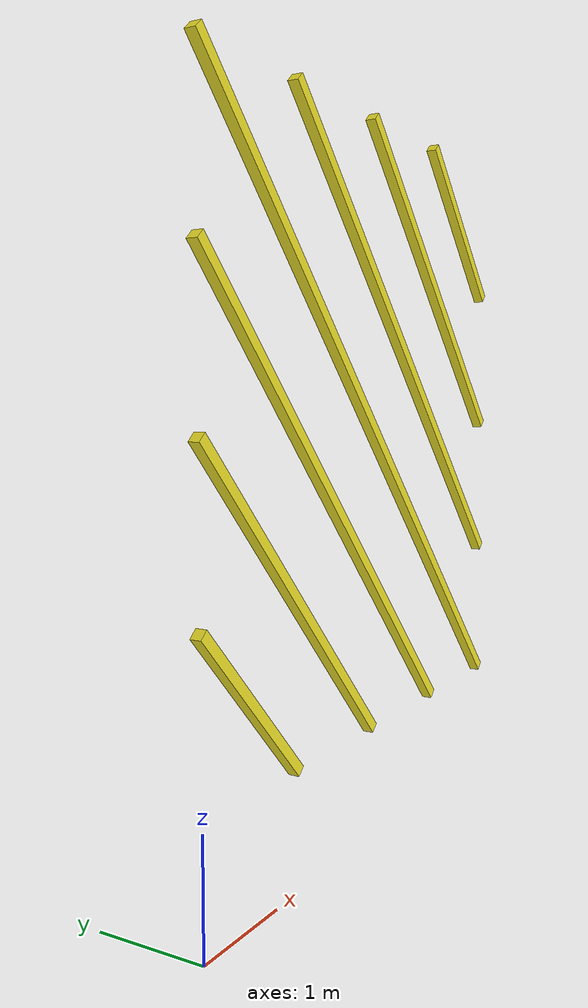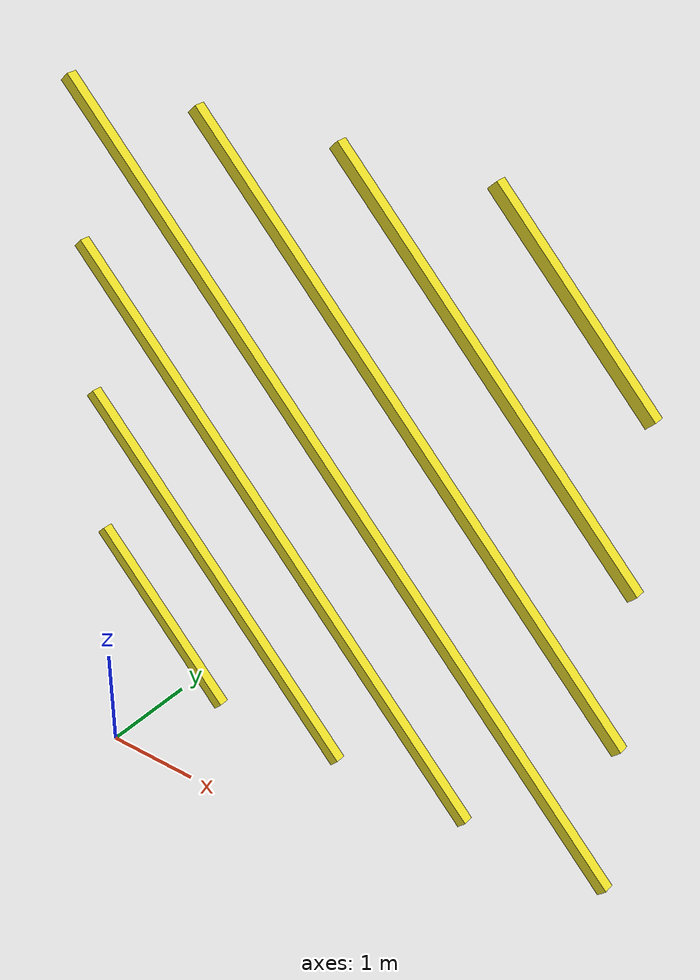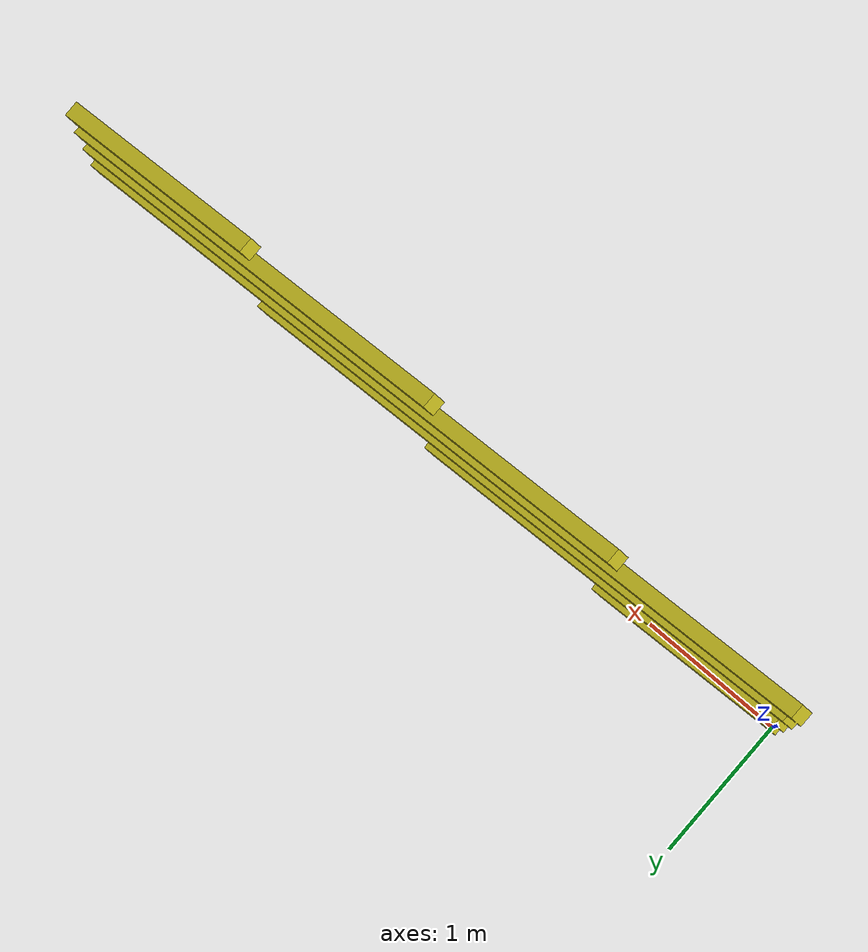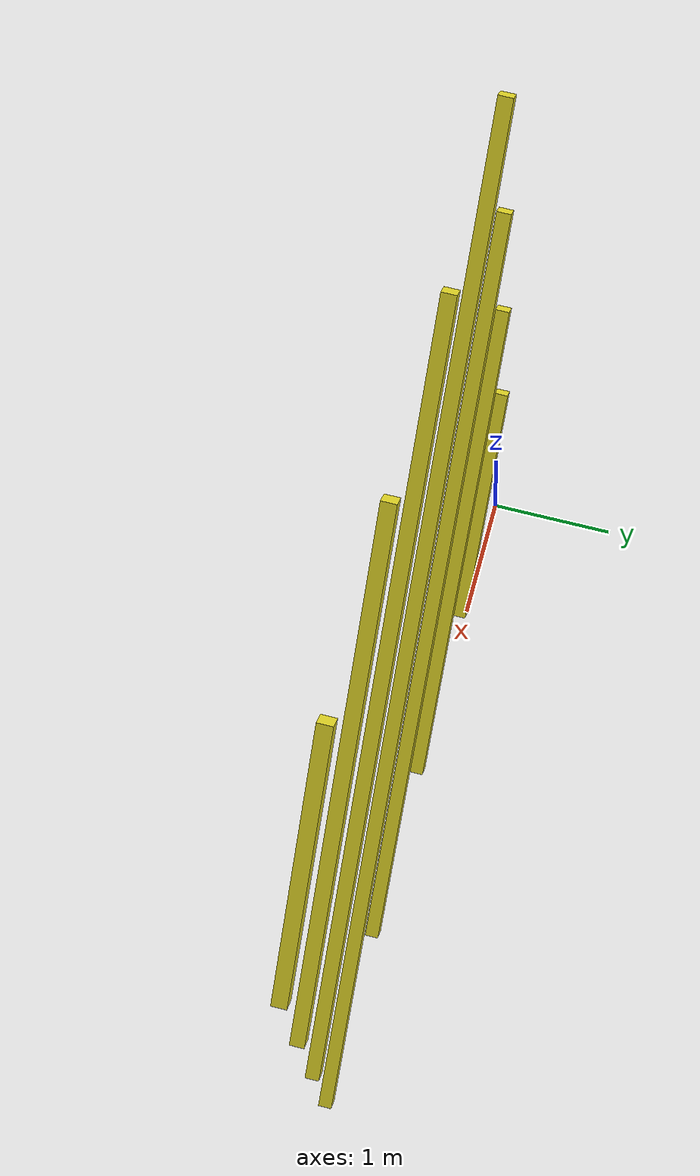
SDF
<?xml version="1.0" ?>
<sdf version="1.4">
  <model name="bars">
    <static>true</static>
    <link name="link">
      <inertial>
        <pose>0 0 1 0 0 0</pose>
        <mass>5</mass>
        <inertia>
          <ixx>0.833</ixx>
          <iyy>0.833</iyy>
          <izz>0.833</izz>
          <ixy>0</ixy>
          <ixz>0</ixz>
        </inertia>
      </inertial>
      <collision name="collision">
        <pose>0 0 1 0 0 0</pose>
        <geometry>
          <mesh>
            <uri>model://bars/meshes/bars.dae</uri>
            <scale>1 1 1</scale>
          </mesh>
        </geometry>
      </collision>

      <visual name="visual">
        <pose>0 0 1 0 0 0</pose>
        <geometry>
          <mesh>
            <uri>model://bars/meshes/bars.dae</uri>
            <scale>1 1 1</scale>
          </mesh>
        </geometry>
        <material>
          <script>
            <uri>model://bars/materials/scripts</uri>
            <uri>model://bars/materials/textures/</uri>
            <name>yellow</name>
          </script>
        </material>
      </visual>
    </link>
  </model>
</sdf>
